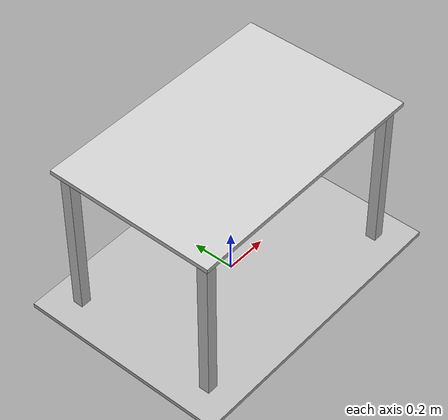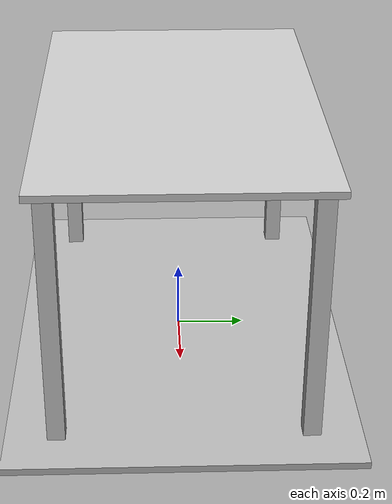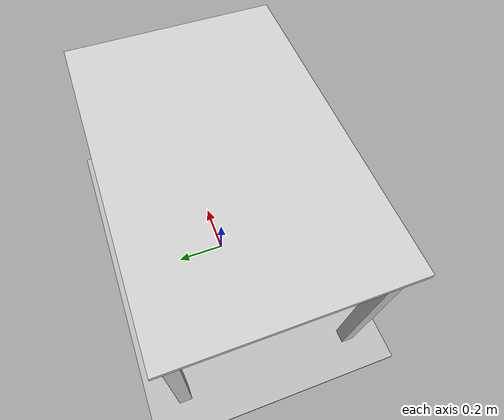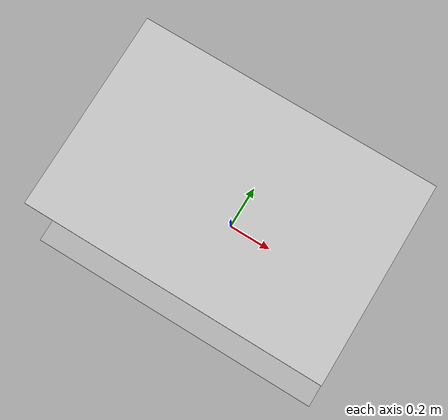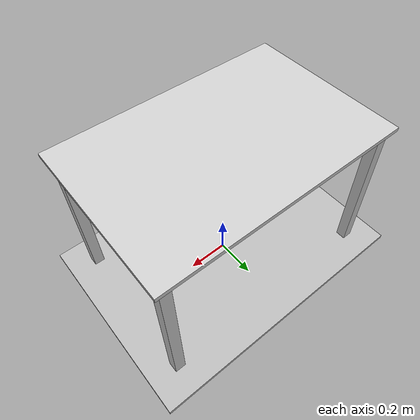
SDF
<?xml version="1.0" ?>
<sdf version="1.6">
  <world name="rwc2019">
    <light name="sun" type="directional">
      <direction>0.5 0.1 -0.9</direction>
      <pose>0 0 10 0 0 0</pose>
      <name>sun</name>
      <specular>0.2 0.2 0.2 1</specular>
      <cast_shadows>true</cast_shadows>
      <diffuse>0.8 0.8 0.8 1</diffuse>
      <attenuation>
        <range>1000</range>
        <quadratic>0.001</quadratic>
        <constant>0.9</constant>
        <linear>0.01</linear>
      </attenuation>
    </light>
    <include name="floor">
      <pose>0 0 0 0 0 0</pose>
      <name>floor</name>
      <uri>model://floor</uri>
    </include>
    <include name="table">
      <pose>0.0 0.0 0.0 0 0 0.0</pose>
      <name>table</name>
      -<uri>model://table</uri>
    </include>
    <name>testmodel</name>
  </world>
</sdf>

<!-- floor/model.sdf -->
<sdf version="1.6">
  <model name="floor">
    <link name="1">
      <collision name="1">
        <geometry>
          <box>
            <size>200 200 0.02</size>
          </box>
        </geometry>
        <name>1</name>
      </collision>
      <visual name="1">
        <geometry>
          <box>
            <size>200 200 0.02</size>
          </box>
        </geometry>
        <name>1</name>
      </visual>
      <pose>0 0 -0.01 0 0 0</pose>
      <name>1</name>
    </link>
    <static>true</static>
    <name>floor</name>
  </model>
</sdf>

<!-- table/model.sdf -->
<sdf version="1.6">
  <model name="table_120x80x76">
    <link name="1">
      <collision name="1">
        <geometry>
          <box>
            <size>1.2 0.8 0.02</size>
          </box>
        </geometry>
        <name>1</name>
      </collision>
      <visual name="1">
        <geometry>
          <box>
            <size>1.2 0.8 0.02</size>
          </box>
        </geometry>
        <material>
          <ambient>0.8 0.8 0.8 1</ambient>
        </material>
        <name>1</name>
      </visual>
      <pose>0 0 0.75 0 0 0</pose>
      <name>1</name>
    </link>
    <link name="2">
      <collision name="2">
        <geometry>
          <box>
            <size>0.05 0.05 0.74</size>
          </box>
        </geometry>
        <name>2</name>
      </collision>
      <visual name="2">
        <geometry>
          <box>
            <size>0.05 0.05 0.74</size>
          </box>
        </geometry>
        <material>
          <ambient>0.8 0.8 0.8 1</ambient>
        </material>
        <name>2</name>
      </visual>
      <pose>-0.55 -0.35 0.37 0 0 0</pose>
      <name>2</name>
    </link>
    <link name="3">
      <collision name="3">
        <geometry>
          <box>
            <size>0.05 0.05 0.74</size>
          </box>
        </geometry>
        <name>3</name>
      </collision>
      <visual name="3">
        <geometry>
          <box>
            <size>0.05 0.05 0.74</size>
          </box>
        </geometry>
        <material>
          <ambient>0.8 0.8 0.8 1</ambient>
        </material>
        <name>3</name>
      </visual>
      <pose>0.55 -0.35 0.37 0 0 0</pose>
      <name>3</name>
    </link>
    <link name="4">
      <collision name="4">
        <geometry>
          <box>
            <size>0.05 0.05 0.74</size>
          </box>
        </geometry>
        <name>4</name>
      </collision>
      <visual name="4">
        <geometry>
          <box>
            <size>0.05 0.05 0.74</size>
          </box>
        </geometry>
        <material>
          <ambient>0.8 0.8 0.8 1</ambient>
        </material>
        <name>4</name>
      </visual>
      <pose>-0.55 0.35 0.37 0 0 0</pose>
      <name>4</name>
    </link>
    <link name="5">
      <collision name="5">
        <geometry>
          <box>
            <size>0.05 0.05 0.74</size>
          </box>
        </geometry>
        <name>5</name>
      </collision>
      <visual name="5">
        <geometry>
          <box>
            <size>0.05 0.05 0.74</size>
          </box>
        </geometry>
        <material>
          <ambient>0.8 0.8 0.8 1</ambient>
        </material>
        <name>5</name>
      </visual>
      <pose>0.55 0.35 0.37 0 0 0</pose>
      <name>5</name>
    </link>
    <link name="in_front_of">
      <virtual_volume name="in_front_of">
        <geometry>
          <box>
            <size>0.6 0.6 0.01</size>
          </box>
        </geometry>
        <pose>0.9 0.0 0.005 0 0 0</pose>
        <name>in_front_of</name>
      </virtual_volume>
      <name>in_front_of</name>
    </link>
    <link name="on_top_of">
      <virtual_volume name="on_top_of">
        <geometry>
          <box>
            <size>1.2 0.8 0.42</size>
          </box>
        </geometry>
        <pose>0.0 0.0 0.99 0 0 0</pose>
        <name>on_top_of</name>
      </virtual_volume>
      <name>on_top_of</name>
    </link>
    <link name="under">
      <virtual_volume name="under">
        <geometry>
          <box>
            <size>1.08 0.68 0.49</size>
          </box>
        </geometry>
        <pose>0.0 0.0 0.255 0 0 0</pose>
        <name>under</name>
      </virtual_volume>
      <name>under</name>
    </link>
    <static>true</static>
    <name>table_120x80x76</name>
  </model>
</sdf>
